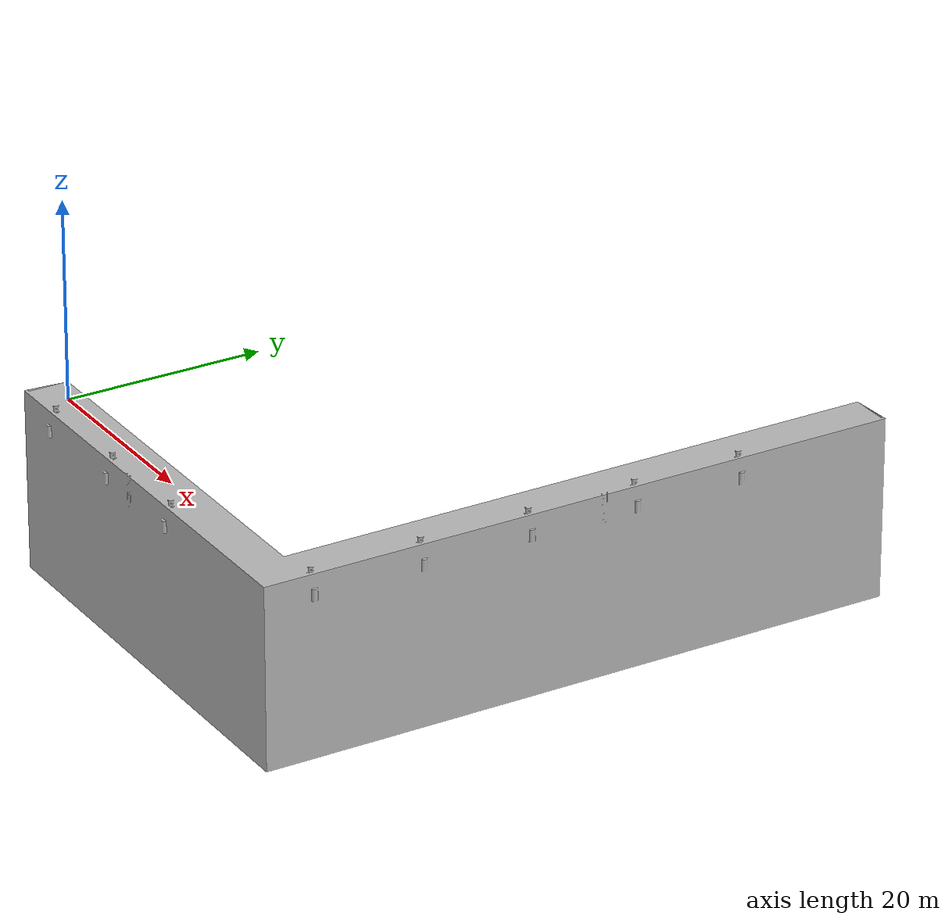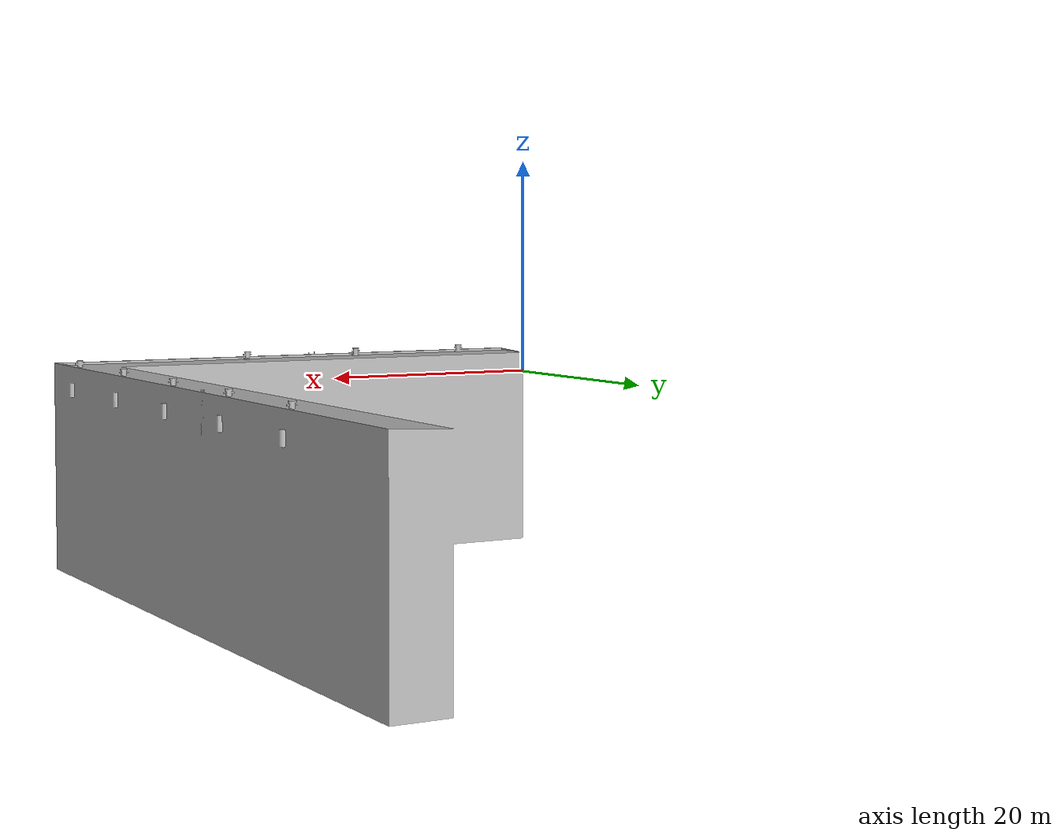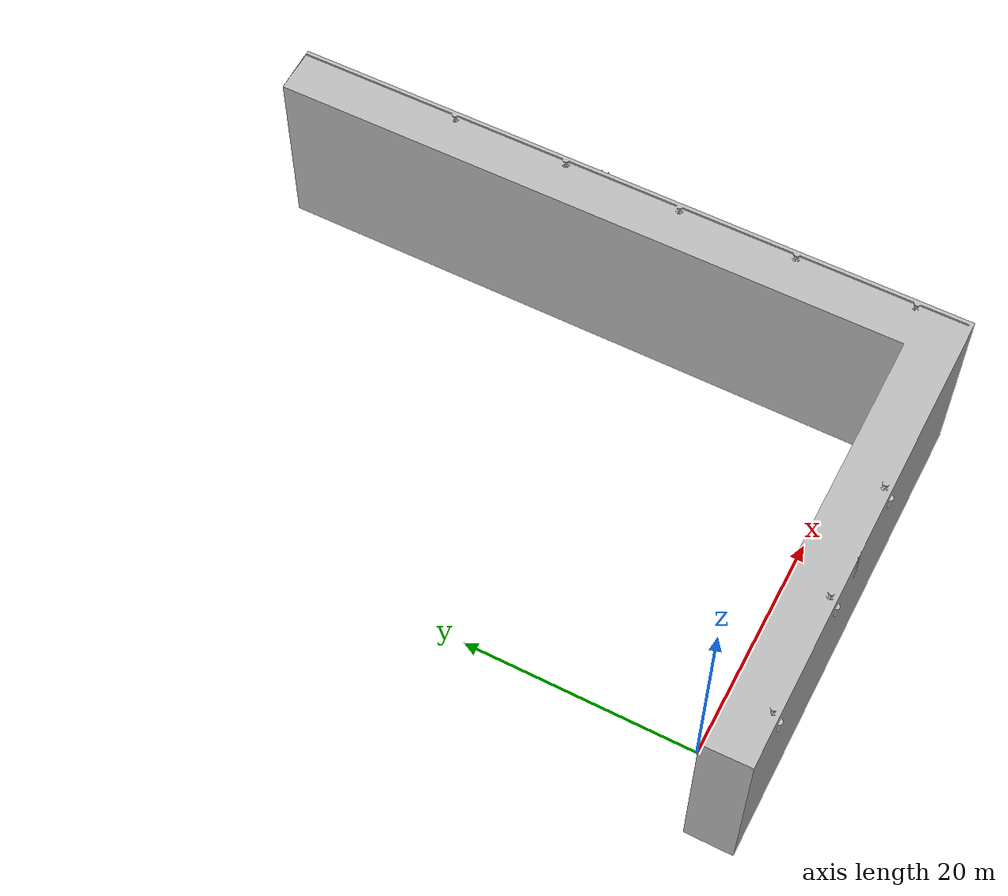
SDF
<?xml version="1.0" ?>
<sdf version="1.9">
  <model name="outer_breakwater_2">
    <static>true</static>
    <link name="quay_link">
      <!-- Arm 1 Collision (Along X) -->
      <collision name="arm1_collision">
        <pose>20.2500 -2.2500 -7.1000 0 0 0</pose>
        <geometry>
          <box>
            <size>40.5000 4.5000 18.2000</size>
          </box>
        </geometry>
        <surface>
          <friction>
            <ode>
              <mu>0.9</mu>
              <mu2>0.9</mu2>
            </ode>
          </friction>
        </surface>
      </collision>

      <!-- Arm 2 Collision (Along Y) -->
      <collision name="arm2_collision">
        <pose>42.7500 27.7500 -7.1000 0 0 0</pose>
        <geometry>
          <box>
            <size>4.5000 64.5000 18.2000</size>
          </box>
        </geometry>
        <surface>
          <friction>
            <ode>
              <mu>0.9</mu>
              <mu2>0.9</mu2>
            </ode>
          </friction>
        </surface>
      </collision>

      <!-- High-Fidelity Photorealistic Visual Mesh -->
      <visual name="quay_visual">
        <pose>0 0 0 0 0 0</pose>
        <geometry>
          <mesh>
            <uri>model://outer_breakwater_2/meshes/outer_breakwater_2.obj</uri>
          </mesh>
        </geometry>
      </visual>
    </link>
  </model>
</sdf>
